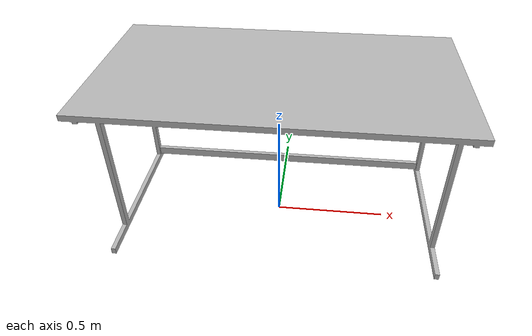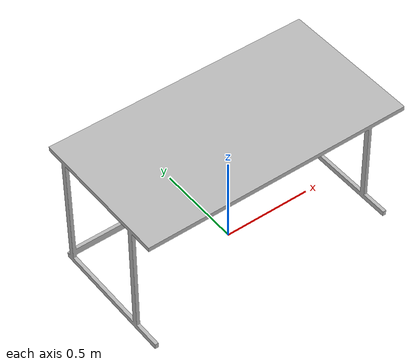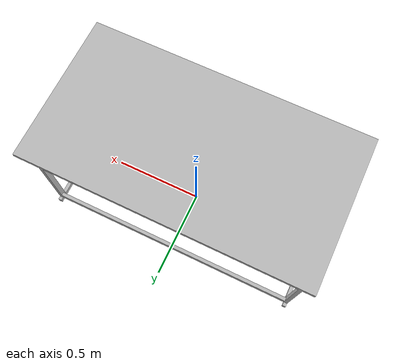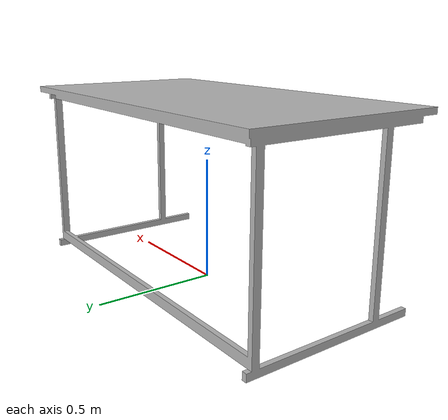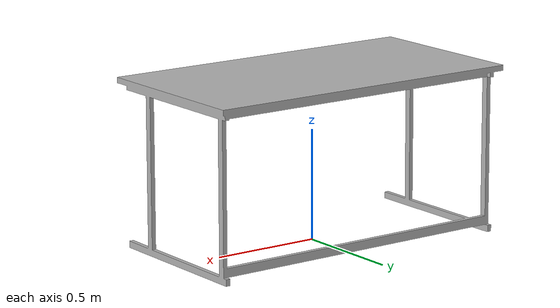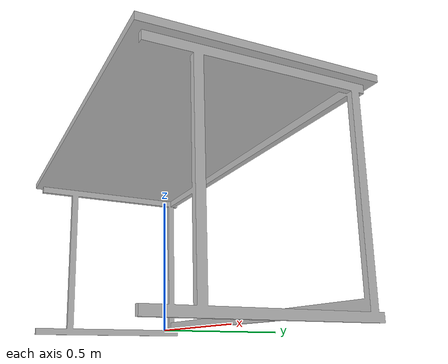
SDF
<?xml version="1.0"?>
<sdf version="1.5">
<model name="stul_150">
	<pose>0 0 0 0 0 0</pose>
	<static>true</static>
	<link name="stul_150_collision">
		<collision name="stul_150_collision">
		<geometry>
			<mesh>
				<uri>model://stul_150/meshes/model.dae</uri>

			</mesh>
		</geometry>
		</collision>
	<visual name="stul_150_mesh">
	<cast_shadows>false</cast_shadows>
		<geometry>
			<mesh>
				<uri> model://stul_150/meshes/model.dae</uri>

			</mesh>
		</geometry>
		<material>
		<script>
			<uri> model://stul_150/material/scripts</uri>
			<uri> model://stul_150/material/textures</uri>
			<name>stul_150/Diffuse</name>
		</script>
		</material>

	</visual>
</link>
</model>
</sdf>
